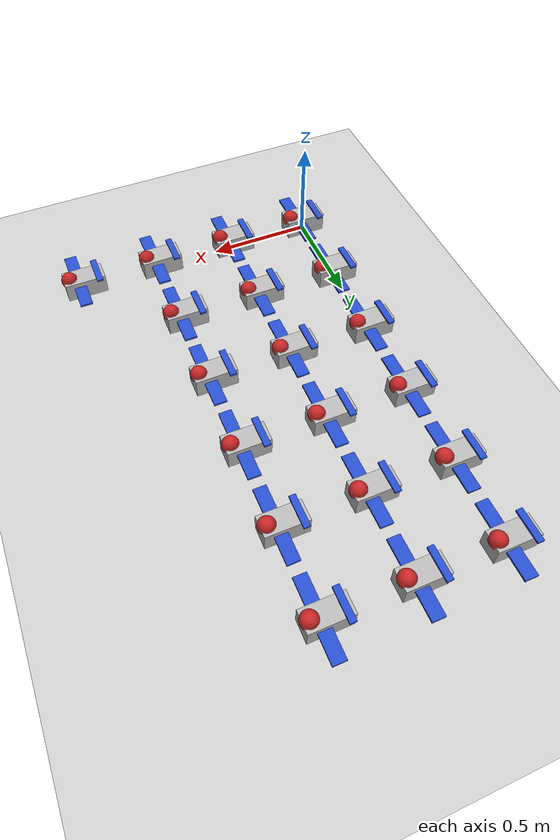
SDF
<sdf version="1.5">
 <world name="default">
  <model name="fixed_wing_0">
   <pose>0.0 0.0 0.05 0 0 0</pose>
   <link name="link">
    <kinematic>true</kinematic>
    <gravity>false</gravity>
    <collision name="collision"><geometry><box><size>0.2 .1 .1</size></box></geometry></collision>
    <visual name="visual"><geometry><box><size>0.2 .1 .1</size></box></geometry></visual>
    <visual name="visual_front">
     <pose>0.07 0 0.04 0 0 0</pose>
     <geometry><sphere><radius>.04</radius></sphere></geometry>
     <material><script><name>Gazebo/Red</name></script></material>
    </visual>
    <visual name="visual_wing1">
     <pose>0.03 0 0.02 0 0 0</pose>
     <geometry><box><size>.06 0.35 0.01</size></box></geometry>
     <material><script><name>Gazebo/Blue</name></script></material>
    </visual>
    <visual name="visual_wing2">
     <pose>-0.07 0 0.055 0 0 0</pose>
     <geometry><box><size>.03 0.15 0.01</size></box></geometry>
     <material><script><name>Gazebo/Blue</name></script></material>
    </visual>
   </link>
   <plugin name="swarm_controller_0" filename="libTeamControllerPlugin.so">
    <type>fixed_wing</type>
    <address>192.168.2.1</address>
    <num_messages>1</num_messages>
   </plugin>
  </model>
  <model name="fixed_wing_1">
   <pose>0.4 0.0 0.05 0 0 0</pose>
   <link name="link">
    <kinematic>true</kinematic>
    <gravity>false</gravity>
    <collision name="collision"><geometry><box><size>0.2 .1 .1</size></box></geometry></collision>
    <visual name="visual"><geometry><box><size>0.2 .1 .1</size></box></geometry></visual>
    <visual name="visual_front">
     <pose>0.07 0 0.04 0 0 0</pose>
     <geometry><sphere><radius>.04</radius></sphere></geometry>
     <material><script><name>Gazebo/Red</name></script></material>
    </visual>
    <visual name="visual_wing1">
     <pose>0.03 0 0.02 0 0 0</pose>
     <geometry><box><size>.06 0.35 0.01</size></box></geometry>
     <material><script><name>Gazebo/Blue</name></script></material>
    </visual>
    <visual name="visual_wing2">
     <pose>-0.07 0 0.055 0 0 0</pose>
     <geometry><box><size>.03 0.15 0.01</size></box></geometry>
     <material><script><name>Gazebo/Blue</name></script></material>
    </visual>
   </link>
   <plugin name="swarm_controller_1" filename="libTeamControllerPlugin.so">
    <type>fixed_wing</type>
    <address>192.168.2.2</address>
    <num_messages>1</num_messages>
   </plugin>
  </model>
  <model name="fixed_wing_2">
   <pose>0.8 0.0 0.05 0 0 0</pose>
   <link name="link">
    <kinematic>true</kinematic>
    <gravity>false</gravity>
    <collision name="collision"><geometry><box><size>0.2 .1 .1</size></box></geometry></collision>
    <visual name="visual"><geometry><box><size>0.2 .1 .1</size></box></geometry></visual>
    <visual name="visual_front">
     <pose>0.07 0 0.04 0 0 0</pose>
     <geometry><sphere><radius>.04</radius></sphere></geometry>
     <material><script><name>Gazebo/Red</name></script></material>
    </visual>
    <visual name="visual_wing1">
     <pose>0.03 0 0.02 0 0 0</pose>
     <geometry><box><size>.06 0.35 0.01</size></box></geometry>
     <material><script><name>Gazebo/Blue</name></script></material>
    </visual>
    <visual name="visual_wing2">
     <pose>-0.07 0 0.055 0 0 0</pose>
     <geometry><box><size>.03 0.15 0.01</size></box></geometry>
     <material><script><name>Gazebo/Blue</name></script></material>
    </visual>
   </link>
   <plugin name="swarm_controller_2" filename="libTeamControllerPlugin.so">
    <type>fixed_wing</type>
    <address>192.168.2.3</address>
    <num_messages>1</num_messages>
   </plugin>
  </model>
  <model name="fixed_wing_3">
   <pose>1.2000000000000002 0.0 0.05 0 0 0</pose>
   <link name="link">
    <kinematic>true</kinematic>
    <gravity>false</gravity>
    <collision name="collision"><geometry><box><size>0.2 .1 .1</size></box></geometry></collision>
    <visual name="visual"><geometry><box><size>0.2 .1 .1</size></box></geometry></visual>
    <visual name="visual_front">
     <pose>0.07 0 0.04 0 0 0</pose>
     <geometry><sphere><radius>.04</radius></sphere></geometry>
     <material><script><name>Gazebo/Red</name></script></material>
    </visual>
    <visual name="visual_wing1">
     <pose>0.03 0 0.02 0 0 0</pose>
     <geometry><box><size>.06 0.35 0.01</size></box></geometry>
     <material><script><name>Gazebo/Blue</name></script></material>
    </visual>
    <visual name="visual_wing2">
     <pose>-0.07 0 0.055 0 0 0</pose>
     <geometry><box><size>.03 0.15 0.01</size></box></geometry>
     <material><script><name>Gazebo/Blue</name></script></material>
    </visual>
   </link>
   <plugin name="swarm_controller_3" filename="libTeamControllerPlugin.so">
    <type>fixed_wing</type>
    <address>192.168.2.4</address>
    <num_messages>1</num_messages>
   </plugin>
  </model>
  <model name="fixed_wing_6">
   <pose>0.0 0.4 0.05 0 0 0</pose>
   <link name="link">
    <kinematic>true</kinematic>
    <gravity>false</gravity>
    <collision name="collision"><geometry><box><size>0.2 .1 .1</size></box></geometry></collision>
    <visual name="visual"><geometry><box><size>0.2 .1 .1</size></box></geometry></visual>
    <visual name="visual_front">
     <pose>0.07 0 0.04 0 0 0</pose>
     <geometry><sphere><radius>.04</radius></sphere></geometry>
     <material><script><name>Gazebo/Red</name></script></material>
    </visual>
    <visual name="visual_wing1">
     <pose>0.03 0 0.02 0 0 0</pose>
     <geometry><box><size>.06 0.35 0.01</size></box></geometry>
     <material><script><name>Gazebo/Blue</name></script></material>
    </visual>
    <visual name="visual_wing2">
     <pose>-0.07 0 0.055 0 0 0</pose>
     <geometry><box><size>.03 0.15 0.01</size></box></geometry>
     <material><script><name>Gazebo/Blue</name></script></material>
    </visual>
   </link>
   <plugin name="swarm_controller_6" filename="libTeamControllerPlugin.so">
    <type>fixed_wing</type>
    <address>192.168.2.7</address>
    <num_messages>1</num_messages>
   </plugin>
  </model>
  <model name="fixed_wing_7">
   <pose>0.4 0.4 0.05 0 0 0</pose>
   <link name="link">
    <kinematic>true</kinematic>
    <gravity>false</gravity>
    <collision name="collision"><geometry><box><size>0.2 .1 .1</size></box></geometry></collision>
    <visual name="visual"><geometry><box><size>0.2 .1 .1</size></box></geometry></visual>
    <visual name="visual_front">
     <pose>0.07 0 0.04 0 0 0</pose>
     <geometry><sphere><radius>.04</radius></sphere></geometry>
     <material><script><name>Gazebo/Red</name></script></material>
    </visual>
    <visual name="visual_wing1">
     <pose>0.03 0 0.02 0 0 0</pose>
     <geometry><box><size>.06 0.35 0.01</size></box></geometry>
     <material><script><name>Gazebo/Blue</name></script></material>
    </visual>
    <visual name="visual_wing2">
     <pose>-0.07 0 0.055 0 0 0</pose>
     <geometry><box><size>.03 0.15 0.01</size></box></geometry>
     <material><script><name>Gazebo/Blue</name></script></material>
    </visual>
   </link>
   <plugin name="swarm_controller_7" filename="libTeamControllerPlugin.so">
    <type>fixed_wing</type>
    <address>192.168.2.8</address>
    <num_messages>1</num_messages>
   </plugin>
  </model>
  <model name="fixed_wing_8">
   <pose>0.8 0.4 0.05 0 0 0</pose>
   <link name="link">
    <kinematic>true</kinematic>
    <gravity>false</gravity>
    <collision name="collision"><geometry><box><size>0.2 .1 .1</size></box></geometry></collision>
    <visual name="visual"><geometry><box><size>0.2 .1 .1</size></box></geometry></visual>
    <visual name="visual_front">
     <pose>0.07 0 0.04 0 0 0</pose>
     <geometry><sphere><radius>.04</radius></sphere></geometry>
     <material><script><name>Gazebo/Red</name></script></material>
    </visual>
    <visual name="visual_wing1">
     <pose>0.03 0 0.02 0 0 0</pose>
     <geometry><box><size>.06 0.35 0.01</size></box></geometry>
     <material><script><name>Gazebo/Blue</name></script></material>
    </visual>
    <visual name="visual_wing2">
     <pose>-0.07 0 0.055 0 0 0</pose>
     <geometry><box><size>.03 0.15 0.01</size></box></geometry>
     <material><script><name>Gazebo/Blue</name></script></material>
    </visual>
   </link>
   <plugin name="swarm_controller_8" filename="libTeamControllerPlugin.so">
    <type>fixed_wing</type>
    <address>192.168.2.9</address>
    <num_messages>1</num_messages>
   </plugin>
  </model>
  <model name="fixed_wing_12">
   <pose>0.0 0.8 0.05 0 0 0</pose>
   <link name="link">
    <kinematic>true</kinematic>
    <gravity>false</gravity>
    <collision name="collision"><geometry><box><size>0.2 .1 .1</size></box></geometry></collision>
    <visual name="visual"><geometry><box><size>0.2 .1 .1</size></box></geometry></visual>
    <visual name="visual_front">
     <pose>0.07 0 0.04 0 0 0</pose>
     <geometry><sphere><radius>.04</radius></sphere></geometry>
     <material><script><name>Gazebo/Red</name></script></material>
    </visual>
    <visual name="visual_wing1">
     <pose>0.03 0 0.02 0 0 0</pose>
     <geometry><box><size>.06 0.35 0.01</size></box></geometry>
     <material><script><name>Gazebo/Blue</name></script></material>
    </visual>
    <visual name="visual_wing2">
     <pose>-0.07 0 0.055 0 0 0</pose>
     <geometry><box><size>.03 0.15 0.01</size></box></geometry>
     <material><script><name>Gazebo/Blue</name></script></material>
    </visual>
   </link>
   <plugin name="swarm_controller_12" filename="libTeamControllerPlugin.so">
    <type>fixed_wing</type>
    <address>192.168.2.13</address>
    <num_messages>1</num_messages>
   </plugin>
  </model>
  <model name="fixed_wing_13">
   <pose>0.4 0.8 0.05 0 0 0</pose>
   <link name="link">
    <kinematic>true</kinematic>
    <gravity>false</gravity>
    <collision name="collision"><geometry><box><size>0.2 .1 .1</size></box></geometry></collision>
    <visual name="visual"><geometry><box><size>0.2 .1 .1</size></box></geometry></visual>
    <visual name="visual_front">
     <pose>0.07 0 0.04 0 0 0</pose>
     <geometry><sphere><radius>.04</radius></sphere></geometry>
     <material><script><name>Gazebo/Red</name></script></material>
    </visual>
    <visual name="visual_wing1">
     <pose>0.03 0 0.02 0 0 0</pose>
     <geometry><box><size>.06 0.35 0.01</size></box></geometry>
     <material><script><name>Gazebo/Blue</name></script></material>
    </visual>
    <visual name="visual_wing2">
     <pose>-0.07 0 0.055 0 0 0</pose>
     <geometry><box><size>.03 0.15 0.01</size></box></geometry>
     <material><script><name>Gazebo/Blue</name></script></material>
    </visual>
   </link>
   <plugin name="swarm_controller_13" filename="libTeamControllerPlugin.so">
    <type>fixed_wing</type>
    <address>192.168.2.14</address>
    <num_messages>1</num_messages>
   </plugin>
  </model>
  <model name="fixed_wing_14">
   <pose>0.8 0.8 0.05 0 0 0</pose>
   <link name="link">
    <kinematic>true</kinematic>
    <gravity>false</gravity>
    <collision name="collision"><geometry><box><size>0.2 .1 .1</size></box></geometry></collision>
    <visual name="visual"><geometry><box><size>0.2 .1 .1</size></box></geometry></visual>
    <visual name="visual_front">
     <pose>0.07 0 0.04 0 0 0</pose>
     <geometry><sphere><radius>.04</radius></sphere></geometry>
     <material><script><name>Gazebo/Red</name></script></material>
    </visual>
    <visual name="visual_wing1">
     <pose>0.03 0 0.02 0 0 0</pose>
     <geometry><box><size>.06 0.35 0.01</size></box></geometry>
     <material><script><name>Gazebo/Blue</name></script></material>
    </visual>
    <visual name="visual_wing2">
     <pose>-0.07 0 0.055 0 0 0</pose>
     <geometry><box><size>.03 0.15 0.01</size></box></geometry>
     <material><script><name>Gazebo/Blue</name></script></material>
    </visual>
   </link>
   <plugin name="swarm_controller_14" filename="libTeamControllerPlugin.so">
    <type>fixed_wing</type>
    <address>192.168.2.15</address>
    <num_messages>1</num_messages>
   </plugin>
  </model>
  <model name="fixed_wing_18">
   <pose>0.0 1.2000000000000002 0.05 0 0 0</pose>
   <link name="link">
    <kinematic>true</kinematic>
    <gravity>false</gravity>
    <collision name="collision"><geometry><box><size>0.2 .1 .1</size></box></geometry></collision>
    <visual name="visual"><geometry><box><size>0.2 .1 .1</size></box></geometry></visual>
    <visual name="visual_front">
     <pose>0.07 0 0.04 0 0 0</pose>
     <geometry><sphere><radius>.04</radius></sphere></geometry>
     <material><script><name>Gazebo/Red</name></script></material>
    </visual>
    <visual name="visual_wing1">
     <pose>0.03 0 0.02 0 0 0</pose>
     <geometry><box><size>.06 0.35 0.01</size></box></geometry>
     <material><script><name>Gazebo/Blue</name></script></material>
    </visual>
    <visual name="visual_wing2">
     <pose>-0.07 0 0.055 0 0 0</pose>
     <geometry><box><size>.03 0.15 0.01</size></box></geometry>
     <material><script><name>Gazebo/Blue</name></script></material>
    </visual>
   </link>
   <plugin name="swarm_controller_18" filename="libTeamControllerPlugin.so">
    <type>fixed_wing</type>
    <address>192.168.2.19</address>
    <num_messages>1</num_messages>
   </plugin>
  </model>
  <model name="fixed_wing_19">
   <pose>0.4 1.2000000000000002 0.05 0 0 0</pose>
   <link name="link">
    <kinematic>true</kinematic>
    <gravity>false</gravity>
    <collision name="collision"><geometry><box><size>0.2 .1 .1</size></box></geometry></collision>
    <visual name="visual"><geometry><box><size>0.2 .1 .1</size></box></geometry></visual>
    <visual name="visual_front">
     <pose>0.07 0 0.04 0 0 0</pose>
     <geometry><sphere><radius>.04</radius></sphere></geometry>
     <material><script><name>Gazebo/Red</name></script></material>
    </visual>
    <visual name="visual_wing1">
     <pose>0.03 0 0.02 0 0 0</pose>
     <geometry><box><size>.06 0.35 0.01</size></box></geometry>
     <material><script><name>Gazebo/Blue</name></script></material>
    </visual>
    <visual name="visual_wing2">
     <pose>-0.07 0 0.055 0 0 0</pose>
     <geometry><box><size>.03 0.15 0.01</size></box></geometry>
     <material><script><name>Gazebo/Blue</name></script></material>
    </visual>
   </link>
   <plugin name="swarm_controller_19" filename="libTeamControllerPlugin.so">
    <type>fixed_wing</type>
    <address>192.168.2.20</address>
    <num_messages>1</num_messages>
   </plugin>
  </model>
  <model name="fixed_wing_20">
   <pose>0.8 1.2000000000000002 0.05 0 0 0</pose>
   <link name="link">
    <kinematic>true</kinematic>
    <gravity>false</gravity>
    <collision name="collision"><geometry><box><size>0.2 .1 .1</size></box></geometry></collision>
    <visual name="visual"><geometry><box><size>0.2 .1 .1</size></box></geometry></visual>
    <visual name="visual_front">
     <pose>0.07 0 0.04 0 0 0</pose>
     <geometry><sphere><radius>.04</radius></sphere></geometry>
     <material><script><name>Gazebo/Red</name></script></material>
    </visual>
    <visual name="visual_wing1">
     <pose>0.03 0 0.02 0 0 0</pose>
     <geometry><box><size>.06 0.35 0.01</size></box></geometry>
     <material><script><name>Gazebo/Blue</name></script></material>
    </visual>
    <visual name="visual_wing2">
     <pose>-0.07 0 0.055 0 0 0</pose>
     <geometry><box><size>.03 0.15 0.01</size></box></geometry>
     <material><script><name>Gazebo/Blue</name></script></material>
    </visual>
   </link>
   <plugin name="swarm_controller_20" filename="libTeamControllerPlugin.so">
    <type>fixed_wing</type>
    <address>192.168.2.21</address>
    <num_messages>1</num_messages>
   </plugin>
  </model>
  <model name="fixed_wing_24">
   <pose>0.0 1.6 0.05 0 0 0</pose>
   <link name="link">
    <kinematic>true</kinematic>
    <gravity>false</gravity>
    <collision name="collision"><geometry><box><size>0.2 .1 .1</size></box></geometry></collision>
    <visual name="visual"><geometry><box><size>0.2 .1 .1</size></box></geometry></visual>
    <visual name="visual_front">
     <pose>0.07 0 0.04 0 0 0</pose>
     <geometry><sphere><radius>.04</radius></sphere></geometry>
     <material><script><name>Gazebo/Red</name></script></material>
    </visual>
    <visual name="visual_wing1">
     <pose>0.03 0 0.02 0 0 0</pose>
     <geometry><box><size>.06 0.35 0.01</size></box></geometry>
     <material><script><name>Gazebo/Blue</name></script></material>
    </visual>
    <visual name="visual_wing2">
     <pose>-0.07 0 0.055 0 0 0</pose>
     <geometry><box><size>.03 0.15 0.01</size></box></geometry>
     <material><script><name>Gazebo/Blue</name></script></material>
    </visual>
   </link>
   <plugin name="swarm_controller_24" filename="libTeamControllerPlugin.so">
    <type>fixed_wing</type>
    <address>192.168.2.25</address>
    <num_messages>1</num_messages>
   </plugin>
  </model>
  <model name="fixed_wing_25">
   <pose>0.4 1.6 0.05 0 0 0</pose>
   <link name="link">
    <kinematic>true</kinematic>
    <gravity>false</gravity>
    <collision name="collision"><geometry><box><size>0.2 .1 .1</size></box></geometry></collision>
    <visual name="visual"><geometry><box><size>0.2 .1 .1</size></box></geometry></visual>
    <visual name="visual_front">
     <pose>0.07 0 0.04 0 0 0</pose>
     <geometry><sphere><radius>.04</radius></sphere></geometry>
     <material><script><name>Gazebo/Red</name></script></material>
    </visual>
    <visual name="visual_wing1">
     <pose>0.03 0 0.02 0 0 0</pose>
     <geometry><box><size>.06 0.35 0.01</size></box></geometry>
     <material><script><name>Gazebo/Blue</name></script></material>
    </visual>
    <visual name="visual_wing2">
     <pose>-0.07 0 0.055 0 0 0</pose>
     <geometry><box><size>.03 0.15 0.01</size></box></geometry>
     <material><script><name>Gazebo/Blue</name></script></material>
    </visual>
   </link>
   <plugin name="swarm_controller_25" filename="libTeamControllerPlugin.so">
    <type>fixed_wing</type>
    <address>192.168.2.26</address>
    <num_messages>1</num_messages>
   </plugin>
  </model>
  <model name="fixed_wing_26">
   <pose>0.8 1.6 0.05 0 0 0</pose>
   <link name="link">
    <kinematic>true</kinematic>
    <gravity>false</gravity>
    <collision name="collision"><geometry><box><size>0.2 .1 .1</size></box></geometry></collision>
    <visual name="visual"><geometry><box><size>0.2 .1 .1</size></box></geometry></visual>
    <visual name="visual_front">
     <pose>0.07 0 0.04 0 0 0</pose>
     <geometry><sphere><radius>.04</radius></sphere></geometry>
     <material><script><name>Gazebo/Red</name></script></material>
    </visual>
    <visual name="visual_wing1">
     <pose>0.03 0 0.02 0 0 0</pose>
     <geometry><box><size>.06 0.35 0.01</size></box></geometry>
     <material><script><name>Gazebo/Blue</name></script></material>
    </visual>
    <visual name="visual_wing2">
     <pose>-0.07 0 0.055 0 0 0</pose>
     <geometry><box><size>.03 0.15 0.01</size></box></geometry>
     <material><script><name>Gazebo/Blue</name></script></material>
    </visual>
   </link>
   <plugin name="swarm_controller_26" filename="libTeamControllerPlugin.so">
    <type>fixed_wing</type>
    <address>192.168.2.27</address>
    <num_messages>1</num_messages>
   </plugin>
  </model>
  <model name="fixed_wing_30">
   <pose>0.0 2.0 0.05 0 0 0</pose>
   <link name="link">
    <kinematic>true</kinematic>
    <gravity>false</gravity>
    <collision name="collision"><geometry><box><size>0.2 .1 .1</size></box></geometry></collision>
    <visual name="visual"><geometry><box><size>0.2 .1 .1</size></box></geometry></visual>
    <visual name="visual_front">
     <pose>0.07 0 0.04 0 0 0</pose>
     <geometry><sphere><radius>.04</radius></sphere></geometry>
     <material><script><name>Gazebo/Red</name></script></material>
    </visual>
    <visual name="visual_wing1">
     <pose>0.03 0 0.02 0 0 0</pose>
     <geometry><box><size>.06 0.35 0.01</size></box></geometry>
     <material><script><name>Gazebo/Blue</name></script></material>
    </visual>
    <visual name="visual_wing2">
     <pose>-0.07 0 0.055 0 0 0</pose>
     <geometry><box><size>.03 0.15 0.01</size></box></geometry>
     <material><script><name>Gazebo/Blue</name></script></material>
    </visual>
   </link>
   <plugin name="swarm_controller_30" filename="libTeamControllerPlugin.so">
    <type>fixed_wing</type>
    <address>192.168.2.31</address>
    <num_messages>1</num_messages>
   </plugin>
  </model>
  <model name="fixed_wing_31">
   <pose>0.4 2.0 0.05 0 0 0</pose>
   <link name="link">
    <kinematic>true</kinematic>
    <gravity>false</gravity>
    <collision name="collision"><geometry><box><size>0.2 .1 .1</size></box></geometry></collision>
    <visual name="visual"><geometry><box><size>0.2 .1 .1</size></box></geometry></visual>
    <visual name="visual_front">
     <pose>0.07 0 0.04 0 0 0</pose>
     <geometry><sphere><radius>.04</radius></sphere></geometry>
     <material><script><name>Gazebo/Red</name></script></material>
    </visual>
    <visual name="visual_wing1">
     <pose>0.03 0 0.02 0 0 0</pose>
     <geometry><box><size>.06 0.35 0.01</size></box></geometry>
     <material><script><name>Gazebo/Blue</name></script></material>
    </visual>
    <visual name="visual_wing2">
     <pose>-0.07 0 0.055 0 0 0</pose>
     <geometry><box><size>.03 0.15 0.01</size></box></geometry>
     <material><script><name>Gazebo/Blue</name></script></material>
    </visual>
   </link>
   <plugin name="swarm_controller_31" filename="libTeamControllerPlugin.so">
    <type>fixed_wing</type>
    <address>192.168.2.32</address>
    <num_messages>1</num_messages>
   </plugin>
  </model>
  <model name="fixed_wing_32">
   <pose>0.8 2.0 0.05 0 0 0</pose>
   <link name="link">
    <kinematic>true</kinematic>
    <gravity>false</gravity>
    <collision name="collision"><geometry><box><size>0.2 .1 .1</size></box></geometry></collision>
    <visual name="visual"><geometry><box><size>0.2 .1 .1</size></box></geometry></visual>
    <visual name="visual_front">
     <pose>0.07 0 0.04 0 0 0</pose>
     <geometry><sphere><radius>.04</radius></sphere></geometry>
     <material><script><name>Gazebo/Red</name></script></material>
    </visual>
    <visual name="visual_wing1">
     <pose>0.03 0 0.02 0 0 0</pose>
     <geometry><box><size>.06 0.35 0.01</size></box></geometry>
     <material><script><name>Gazebo/Blue</name></script></material>
    </visual>
    <visual name="visual_wing2">
     <pose>-0.07 0 0.055 0 0 0</pose>
     <geometry><box><size>.03 0.15 0.01</size></box></geometry>
     <material><script><name>Gazebo/Blue</name></script></material>
    </visual>
   </link>
   <plugin name="swarm_controller_32" filename="libTeamControllerPlugin.so">
    <type>fixed_wing</type>
    <address>192.168.2.33</address>
    <num_messages>1</num_messages>
   </plugin>
  </model>
  <model name="ground_plane">
   <static>true</static>
   <link name="link">
    <collision name="collision">
     <geometry><plane><normal>0 0 1</normal><size>10000 10000</size></plane></geometry>
     <surface><friction><ode><mu>100</mu><mu2>50</mu2></ode></friction></surface>
    </collision>
    <visual name="visual">
     <cast_shadows>false</cast_shadows>
     <geometry><plane><normal>0 0 1</normal><size>10000 10000</size></plane></geometry>
     <material>
      <script><uri>file://media/materials/scripts/gazebo.material</uri><name>Gazebo/Grey</name></script>
     </material>
    </visual>
   </link>
  </model>
 </world>
</sdf>
